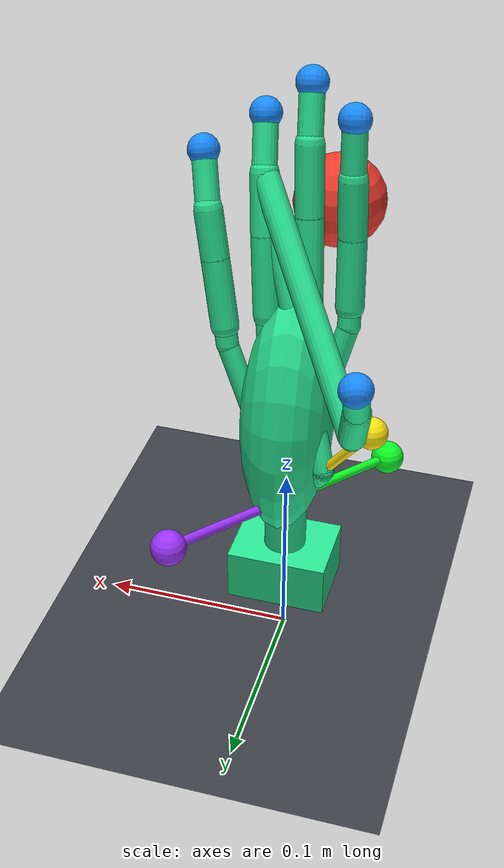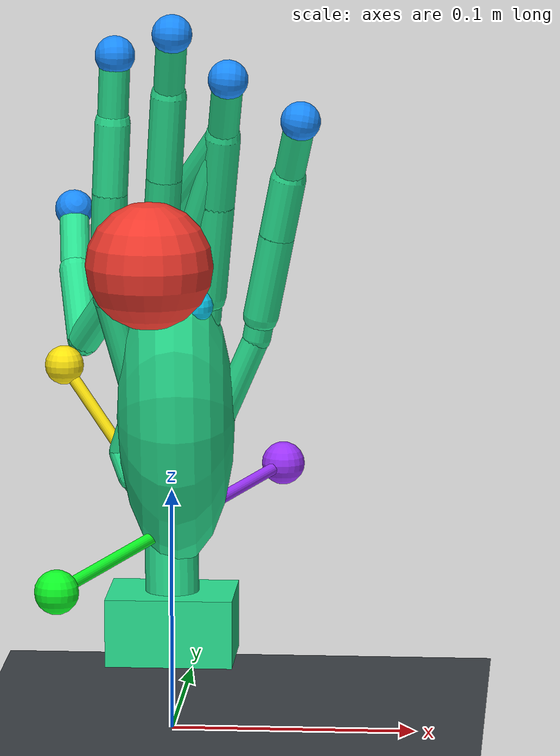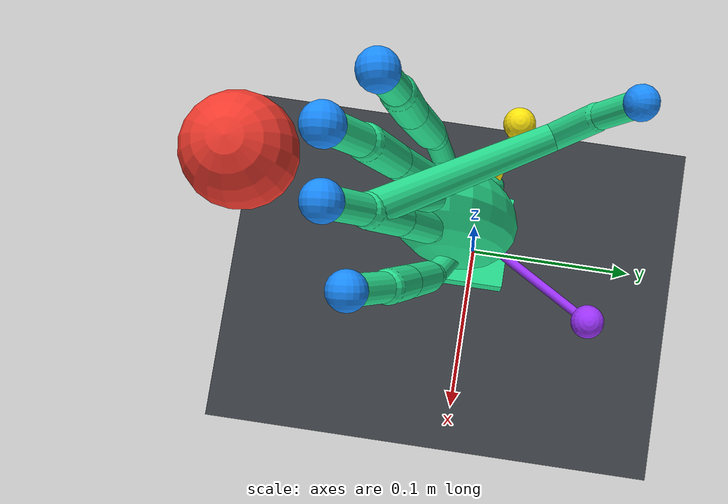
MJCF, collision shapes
<?xml version="1.0" encoding="utf-8"?>
<mujoco model="hand_stage1_export3_palm_orientation_debug">
  <include file="hand_stage1_export3.xml"/>
  <visual>
    <global azimuth="145" elevation="-25" offwidth="1280" offheight="900"/>
  </visual>
  <asset>
    <texture type="2d" name="ground_checker" builtin="checker" rgb1="0.18 0.20 0.22" rgb2="0.28 0.30 0.32" width="300" height="300"/>
    <material name="ground_mat" texture="ground_checker" texrepeat="5 5" reflectance="0.15"/>
  </asset>
  <worldbody>
    <light pos="-0.25 0.25 0.5"/>
    <geom name="ground" type="plane" pos="0 0 0" size="0.4 0.4 0.02" material="ground_mat" contype="1" conaffinity="3"/>
    <body name="ball" pos="0 -0.1 0.21">
      <freejoint name="ball_freejoint"/>
      <geom name="ball_geom" type="sphere" size="0.025" rgba="0.95 0.23 0.18 1" mass="0.03" friction="0.8 0.05 0.001" condim="3" contype="2" conaffinity="1"/>
    </body>
    <geom name="palm_center_marker" type="sphere" pos="0.00057114467 -0.0006589003 0.085273056" size="0.007" rgba="1 0.55 0.05 1" contype="0" conaffinity="0"/>
    <geom name="palmar_side_marker" type="sphere" pos="-0.040299708 -0.068222889 0.072440256" size="0.009" rgba="0.05 1 0.15 1" contype="0" conaffinity="0"/>
    <geom name="dorsal_side_marker" type="sphere" pos="0.041441998 0.066905089 0.098105855" size="0.009" rgba="0.62 0.2 1 1" contype="0" conaffinity="0"/>
    <geom name="finger_forward_marker" type="sphere" pos="0.011103507 -0.025327667 0.18160852" size="0.008" rgba="0.05 0.85 1 1" contype="0" conaffinity="0"/>
    <geom name="thumb_side_marker" type="sphere" pos="-0.045456894 0.015123374 0.14877376" size="0.008" rgba="1 0.9 0.05 1" contype="0" conaffinity="0"/>
    <geom name="palmar_axis" type="capsule" fromto="0.00057114467 -0.0006589003 0.085273056 -0.040299708 -0.068222889 0.072440256" size="0.0025" rgba="0.05 1 0.15 1" contype="0" conaffinity="0"/>
    <geom name="dorsal_axis" type="capsule" fromto="0.00057114467 -0.0006589003 0.085273056 0.041441998 0.066905089 0.098105855" size="0.0025" rgba="0.62 0.2 1 1" contype="0" conaffinity="0"/>
    <geom name="finger_forward_axis" type="capsule" fromto="0.00057114467 -0.0006589003 0.085273056 0.011103507 -0.025327667 0.18160852" size="0.0025" rgba="0.05 0.85 1 1" contype="0" conaffinity="0"/>
    <geom name="thumb_side_axis" type="capsule" fromto="0.00057114467 -0.0006589003 0.085273056 -0.045456894 0.015123374 0.14877376" size="0.0025" rgba="1 0.9 0.05 1" contype="0" conaffinity="0"/>
    <camera name="full_hand_with_ball" pos="0.20 -0.34 0.29" xyaxes="0.834219 0.551433 0 -0.16379 0.247785 0.954869" fovy="45"/>
    <camera name="front" pos="0.20 -0.34 0.29" xyaxes="0.834219 0.551433 0 -0.16379 0.247785 0.954869" fovy="45"/>
    <camera name="side" pos="0.34 0.02 0.24" xyaxes="-0.190477 0.981692 0 -0.169999 -0.0329848 0.984892" fovy="45"/>
    <camera name="top" pos="0.02 -0.06 0.48" xyaxes="0.707107 0.707107 0 -0.705346 0.705346 0.0705346" fovy="45"/>
    <camera name="palm" pos="0.03 -0.23 0.21" xyaxes="0.995037 0.0995037 0 -0.030061 0.30061 0.953268" fovy="38"/>
  </worldbody>
</mujoco>

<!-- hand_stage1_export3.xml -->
<mujoco model="hand_stage1_export3">
  <compiler angle="radian" meshdir="../meshes_export3" autolimits="true"/>
  <option timestep="0.002" gravity="0 0 -9.81"/>
  <visual>
    <global azimuth="145" elevation="-25" offwidth="1280" offheight="900"/>
  </visual>
  <default>
    <joint damping="0.08" armature="0.0001"/>
    <geom solref="0.01 1" solimp="0.9 0.95 0.001"/>
  </default>
  <statistic center="0.005 -0.045 0.18" extent="0.24"/>
  <asset>
    <mesh name="hand_base_link_mesh" file="hand_base_link.STL" scale="1 1 1"/>
    <mesh name="wrist_middle_link_mesh" file="wrist_middle_link.STL" scale="1 1 1"/>
    <mesh name="palm_link_mesh" file="palm_link.STL" scale="1 1 1"/>
    <mesh name="index_mcp_flex_link_mesh" file="index_mcp_flex_link.STL" scale="1 1 1"/>
    <mesh name="index_proximal_phalanx_link_mesh" file="index_proximal_phalanx_link.STL" scale="1 1 1"/>
    <mesh name="index_proximal_inter_link_mesh" file="index_proximal_inter_link.STL" scale="1 1 1"/>
    <mesh name="index_distal_link_mesh" file="index_distal_link.STL" scale="1 1 1"/>
    <mesh name="middle_mcp_flex_link_mesh" file="middle_mcp_flex_link.STL" scale="1 1 1"/>
    <mesh name="middle_proximal_phalanx_link_mesh" file="middle_proximal_phalanx_link.STL" scale="1 1 1"/>
    <mesh name="middle_proximal_inter_link_mesh" file="middle_proximal_inter_link.STL" scale="1 1 1"/>
    <mesh name="middle_distal_link_mesh" file="middle_distal_link.STL" scale="1 1 1"/>
    <mesh name="ring_mcp_flex_link_mesh" file="ring_mcp_flex_link.STL" scale="1 1 1"/>
    <mesh name="ring_proximal_phalanx_link_mesh" file="ring_proximal_phalanx_link.STL" scale="1 1 1"/>
    <mesh name="ring_proximal_inter_link_mesh" file="ring_proximal_inter_link.STL" scale="1 1 1"/>
    <mesh name="ring_distal_link_mesh" file="ring_distal_link.STL" scale="1 1 1"/>
    <mesh name="little_mcp_flex_link_mesh" file="little_mcp_flex_link.STL" scale="1 1 1"/>
    <mesh name="little_proximal_phalanx_link_mesh" file="little_proximal_phalanx_link.STL" scale="1 1 1"/>
    <mesh name="little_proximal_inter_link_mesh" file="little_proximal_inter_link.STL" scale="1 1 1"/>
    <mesh name="little_distal_link_mesh" file="little_distal_link.STL" scale="1 1 1"/>
    <mesh name="thumb_root_connector_link_mesh" file="thumb_root_connector_link.STL" scale="1 1 1"/>
    <mesh name="thumb_trapezium1_link_mesh" file="thumb_trapezium1_link.STL" scale="1 1 1"/>
    <mesh name="thumb_metacarpal_link_mesh" file="thumb_metacarpal_link.STL" scale="1 1 1"/>
    <mesh name="thumb_proximal_link_mesh" file="thumb_proximal_link.STL" scale="1 1 1"/>
    <mesh name="thumb_distal_link_mesh" file="thumb_distal_link.STL" scale="1 1 1"/>
  </asset>
  <worldbody>
    <body name="hand_base_link" pos="0 0 0.05">
      <inertial pos="0 0 0" mass="0.012576523" diaginertia="1e-5 1e-5 1e-5"/>
      <geom name="hand_base_link_export3_visual" type="mesh" mesh="hand_base_link_mesh" pos="0 0 0" quat="1 0 0 0" rgba="0.792156862745098 0.819607843137255 0.933333333333333 1" contype="0" conaffinity="0" group="2"/>
      <geom name="hand_base_link_collision_proxy" type="box" pos="0 0 -0.006" size="0.026 0.020 0.014" rgba="0.16 0.90 0.58 0.34" contype="1" conaffinity="2" group="3"/>
      <body name="wrist_middle_link" pos="0 0 0.015" quat="0.021734468 0.031497148 -0.70640493 -0.70677267">
        <joint name="wrist_1_joint" type="hinge" axis="0 0 -1" limited="true" range="-0.8 0.8" damping="0.08" armature="0.0001"/>
        <inertial pos="0 0 0" mass="0.010062493" diaginertia="1e-5 1e-5 1e-5"/>
        <geom name="wrist_middle_link_export3_visual" type="mesh" mesh="wrist_middle_link_mesh" pos="0 0 0" quat="1 0 0 0" rgba="0.792156862745098 0.819607843137255 0.933333333333333 1" contype="0" conaffinity="0" group="2"/>
        <geom name="wrist_middle_link_collision_proxy" type="capsule" fromto="0 -0.018 0 0 0.018 0" size="0.011" rgba="0.16 0.90 0.58 0.34" contype="1" conaffinity="2" group="3"/>
        <body name="palm_link" pos="-0.0008 0.020263937 -0.0007" quat="0.7042091 -0.063949537 -0.7042091 0.063949537">
          <inertial pos="0 0 0" mass="0.14137095" diaginertia="1e-5 1e-5 1e-5"/>
          <geom name="palm_link_export3_visual" type="mesh" mesh="palm_link_mesh" pos="0 0 0" quat="1 0 0 0" rgba="0.792156862745098 0.819607843137255 0.933333333333333 1" contype="0" conaffinity="0" group="2"/>
          <geom name="palm_link_collision_proxy_ellipsoid" type="ellipsoid" pos="0 0.048 0.002" size="0.030 0.064 0.024" rgba="0.16 0.90 0.58 0.34" contype="1" conaffinity="2" group="3" friction="0.9 0.04 0.001"/>
          <geom name="palm_link_index_mcp_flex_joint_collision_proxy_spoke" type="capsule" fromto="0 0 0 -0.0014332629 0.1003371 -0.024802645" size="0.0055" rgba="0.16 0.90 0.58 0.34" contype="1" conaffinity="2" group="3" friction="0.9 0.04 0.001"/>
          <geom name="palm_link_middle_mcp_flex_joint_collision_proxy_spoke" type="capsule" fromto="0 0 0 -0.0014332629 0.097567248 -0.0048026451" size="0.0055" rgba="0.16 0.90 0.58 0.34" contype="1" conaffinity="2" group="3" friction="0.9 0.04 0.001"/>
          <geom name="palm_link_ring_mcp_flex_joint_collision_proxy_spoke" type="capsule" fromto="0 0 0 -0.0014332629 0.090988841 0.015197355" size="0.0055" rgba="0.16 0.90 0.58 0.34" contype="1" conaffinity="2" group="3" friction="0.9 0.04 0.001"/>
          <geom name="palm_link_little_mcp_flex_joint_collision_proxy_spoke" type="capsule" fromto="0 0 0 -0.0014332629 0.082348214 0.035197355" size="0.0055" rgba="0.16 0.90 0.58 0.34" contype="1" conaffinity="2" group="3" friction="0.9 0.04 0.001"/>
          <geom name="palm_link_thumb_root_connector_fixed_joint_collision_proxy_spoke" type="capsule" fromto="0 0 0 0.0064687769 0.019331857 -0.016418226" size="0.0055" rgba="0.16 0.90 0.58 0.34" contype="1" conaffinity="2" group="3" friction="0.9 0.04 0.001"/>
          <body name="index_mcp_flex_link" pos="-0.0014332629 0.1003371 -0.024802645" quat="0.70710678 0 0.70710678 0">
            <joint name="index_mcp_flex_joint" type="hinge" axis="0 0 -1" limited="true" range="-0.5 0.5" damping="0.08" armature="0.0001"/>
            <inertial pos="0 0 0" mass="0.0017548052" diaginertia="1e-5 1e-5 1e-5"/>
            <geom name="index_mcp_flex_link_export3_visual" type="mesh" mesh="index_mcp_flex_link_mesh" pos="0 0 0" quat="1 0 0 0" rgba="0.792156862745098 0.819607843137255 0.933333333333333 1" contype="0" conaffinity="0" group="2"/>
            <geom name="index_mcp_flex_link_collision_proxy" type="capsule" fromto="0 0 0 -0.00051676254 0.0097416976 -0.00026673708" size="0.0058" rgba="0.16 0.90 0.58 0.34" contype="1" conaffinity="2" group="3" friction="0.9 0.04 0.001"/>
            <body name="index_proximal_phalanx_link" pos="-0.00051676254 0.0097416976 -0.00026673708" quat="0.70685854 -0.018735 0.70685854 0.018735">
              <joint name="index_mcp_abd_joint" type="hinge" axis="0 0 -1" limited="true" range="0.2 1.2" damping="0.08" armature="0.0001"/>
              <inertial pos="0 0 0" mass="0.0070310696" diaginertia="1e-5 1e-5 1e-5"/>
              <geom name="index_proximal_phalanx_link_export3_visual" type="mesh" mesh="index_proximal_phalanx_link_mesh" pos="0 0 0" quat="1 0 0 0" rgba="0.792156862745098 0.819607843137255 0.933333333333333 1" contype="0" conaffinity="0" group="2"/>
              <geom name="index_proximal_phalanx_link_collision_proxy" type="capsule" fromto="0 0 0 -0.00021096449 0.034999364 0.00025" size="0.0072" rgba="0.16 0.90 0.58 0.34" contype="1" conaffinity="2" group="3" friction="0.9 0.04 0.001"/>
              <body name="index_proximal_inter_link" pos="-0.00021096449 0.034999364 0.00025" quat="0.97605087 0.012185394 0.058843732 0.20907807">
                <joint name="index_pip_joint" type="hinge" axis="0.109773553624728 -0.0483929965230635 -0.992777862772996" limited="true" range="0 1.57" damping="0.08" armature="0.0001"/>
                <inertial pos="0 0 0" mass="0.0059704873" diaginertia="1e-5 1e-5 1e-5"/>
                <geom name="index_proximal_inter_link_export3_visual" type="mesh" mesh="index_proximal_inter_link_mesh" pos="0 0 0" quat="1 0 0 0" rgba="0.792156862745098 0.819607843137255 0.933333333333333 1" contype="0" conaffinity="0" group="2"/>
                <geom name="index_proximal_inter_link_collision_proxy" type="capsule" fromto="0 0 0 0.0097266332 0.027252107 -0.00045436552" size="0.0072" rgba="0.16 0.90 0.58 0.34" contype="1" conaffinity="2" group="3" friction="0.9 0.04 0.001"/>
                <body name="index_distal_link" pos="0.0097266332 0.027252107 -0.00045436552" quat="1 0 0 0">
                  <joint name="index_dip_joint" type="hinge" axis="0 0 -1" limited="true" range="0 1.2" damping="0.08" armature="0.0001"/>
                  <inertial pos="0 0 0" mass="0.0053528415" diaginertia="1e-5 1e-5 1e-5"/>
                  <geom name="index_distal_link_export3_visual" type="mesh" mesh="index_distal_link_mesh" pos="0 0 0" quat="1 0 0 0" rgba="0.792156862745098 0.819607843137255 0.933333333333333 1" contype="0" conaffinity="0" group="2"/>
                  <geom name="index_distal_link_collision_proxy" type="capsule" fromto="0 0 0 0.011092007 0.025709199 -6.7060969e-05" size="0.0062" rgba="0.16 0.90 0.58 0.34" contype="1" conaffinity="2" group="3" friction="0.9 0.04 0.001"/>
                  <site name="index_tip_site" pos="0.011092007 0.025709199 -6.7060969e-05" size="0.008" rgba="0.10 0.55 1.0 1" type="sphere"/>
                </body>
              </body>
            </body>
          </body>
          <body name="middle_mcp_flex_link" pos="-0.0014332629 0.097567248 -0.0048026451" quat="0.70710678 0 0.70710678 0">
            <joint name="middle_mcp_flex_joint" type="hinge" axis="0 0 -1" limited="true" range="-0.5 0.5" damping="0.08" armature="0.0001"/>
            <inertial pos="0 0 0" mass="0.0017548053" diaginertia="1e-5 1e-5 1e-5"/>
            <geom name="middle_mcp_flex_link_export3_visual" type="mesh" mesh="middle_mcp_flex_link_mesh" pos="0 0 0" quat="1 0 0 0" rgba="0.792156862745098 0.819607843137255 0.933333333333333 1" contype="0" conaffinity="0" group="2"/>
            <geom name="middle_mcp_flex_link_collision_proxy" type="capsule" fromto="0 0 0 -0.00064254397 0.0097342104 -0.00026673708" size="0.0058" rgba="0.16 0.90 0.58 0.34" contype="1" conaffinity="2" group="3" friction="0.9 0.04 0.001"/>
            <body name="middle_proximal_phalanx_link" pos="-0.00064254397 0.0097342104 -0.00026673708" quat="0.48325317 0.48325317 0.51620381 0.51620381">
              <joint name="middle_mcp_abd_joint" type="hinge" axis="0 0 -1" limited="true" range="0.2 1.2" damping="0.08" armature="0.0001"/>
              <inertial pos="0 0 0" mass="0.0090532579" diaginertia="1e-5 1e-5 1e-5"/>
              <geom name="middle_proximal_phalanx_link_export3_visual" type="mesh" mesh="middle_proximal_phalanx_link_mesh" pos="0 0 0" quat="1 0 0 0" rgba="0.792156862745098 0.819607843137255 0.933333333333333 1" contype="0" conaffinity="0" group="2"/>
              <geom name="middle_proximal_phalanx_link_collision_proxy" type="capsule" fromto="0 0 0 0.044915416 -0.0027577974 -0.0003" size="0.0072" rgba="0.16 0.90 0.58 0.34" contype="1" conaffinity="2" group="3" friction="0.9 0.04 0.001"/>
              <body name="middle_proximal_inter_link" pos="0.044915416 -0.0027577974 -0.0003" quat="1 0 0 0">
                <joint name="middle_pip_joint" type="hinge" axis="0 0 -1" limited="true" range="0 1.57" damping="0.08" armature="0.0001"/>
                <inertial pos="0 0 0" mass="0.0073249127" diaginertia="1e-5 1e-5 1e-5"/>
                <geom name="middle_proximal_inter_link_export3_visual" type="mesh" mesh="middle_proximal_inter_link_mesh" pos="0 0 0" quat="1 0 0 0" rgba="0.792156862745098 0.819607843137255 0.933333333333333 1" contype="0" conaffinity="0" group="2"/>
                <geom name="middle_proximal_inter_link_collision_proxy" type="capsule" fromto="0 0 0 0.03498049 -0.0011684823 -0.0002" size="0.0072" rgba="0.16 0.90 0.58 0.34" contype="1" conaffinity="2" group="3" friction="0.9 0.04 0.001"/>
                <body name="middle_distal_link" pos="0.03498049 -0.0011684823 -0.0002" quat="1 0 0 0">
                  <joint name="middle_dip_joint" type="hinge" axis="0 0 -1" limited="true" range="0 1.2" damping="0.08" armature="0.0001"/>
                  <inertial pos="0 0 0" mass="0.0053530376" diaginertia="1e-5 1e-5 1e-5"/>
                  <geom name="middle_distal_link_export3_visual" type="mesh" mesh="middle_distal_link_mesh" pos="0 0 0" quat="1 0 0 0" rgba="0.792156862745098 0.819607843137255 0.933333333333333 1" contype="0" conaffinity="0" group="2"/>
                  <geom name="middle_distal_link_collision_proxy" type="capsule" fromto="0 0 0 0.027301483 -0.006215095 -4.054405e-05" size="0.0062" rgba="0.16 0.90 0.58 0.34" contype="1" conaffinity="2" group="3" friction="0.9 0.04 0.001"/>
                  <site name="middle_tip_site" pos="0.027301483 -0.006215095 -4.054405e-05" size="0.008" rgba="0.10 0.55 1.0 1" type="sphere"/>
                </body>
              </body>
            </body>
          </body>
          <body name="ring_mcp_flex_link" pos="-0.0014332629 0.090988841 0.015197355" quat="0.70710678 0 0.70710678 0">
            <joint name="ring_mcp_flex_joint" type="hinge" axis="-0.995998795256862 -0.0893666595933805 0" limited="true" range="-0.5 0.5" damping="0.08" armature="0.0001"/>
            <inertial pos="0 0 0" mass="0.0017548053" diaginertia="1e-5 1e-5 1e-5"/>
            <geom name="ring_mcp_flex_link_export3_visual" type="mesh" mesh="ring_mcp_flex_link_mesh" pos="0 0 0" quat="1 0 0 0" rgba="0.792156862745098 0.819607843137255 0.933333333333333 1" contype="0" conaffinity="0" group="2"/>
            <geom name="ring_mcp_flex_link_collision_proxy" type="capsule" fromto="0 0 0 -0.00087180699 0.0097163608 -0.00026673708" size="0.0058" rgba="0.16 0.90 0.58 0.34" contype="1" conaffinity="2" group="3" friction="0.9 0.04 0.001"/>
            <body name="ring_proximal_phalanx_link" pos="-0.00087180699 0.0097163608 -0.00026673708" quat="0.47713555 0.47713555 0.52186365 0.52186365">
              <joint name="ring_mcp_abd_joint" type="hinge" axis="0 0 -1" limited="true" range="-0.2 1.2" damping="0.08" armature="0.0001"/>
              <inertial pos="0 0 0" mass="0.0079217428" diaginertia="1e-5 1e-5 1e-5"/>
              <geom name="ring_proximal_phalanx_link_export3_visual" type="mesh" mesh="ring_proximal_phalanx_link_mesh" pos="0 0 0" quat="1 0 0 0" rgba="0.792156862745098 0.819607843137255 0.933333333333333 1" contype="0" conaffinity="0" group="2"/>
              <geom name="ring_proximal_phalanx_link_collision_proxy" type="capsule" fromto="0 0 0 0.039933234 -0.0023101612 -0.0003" size="0.0072" rgba="0.16 0.90 0.58 0.34" contype="1" conaffinity="2" group="3" friction="0.9 0.04 0.001"/>
              <body name="ring_proximal_inter_link" pos="0.039933234 -0.0023101612 -0.0003" quat="0.70710678 0 0 -0.70710678">
                <joint name="ring_pip_joint" type="hinge" axis="0 0 -1" limited="true" range="0 1.57" damping="0.08" armature="0.0001"/>
                <inertial pos="0 0 0" mass="0.0062089763" diaginertia="1e-5 1e-5 1e-5"/>
                <geom name="ring_proximal_inter_link_export3_visual" type="mesh" mesh="ring_proximal_inter_link_mesh" pos="0 0 0" quat="1 0 0 0" rgba="0.792156862745098 0.819607843137255 0.933333333333333 1" contype="0" conaffinity="0" group="2"/>
                <geom name="ring_proximal_inter_link_collision_proxy" type="capsule" fromto="0 0 0 0.0039742641 0.029735589 -0.0002" size="0.0072" rgba="0.16 0.90 0.58 0.34" contype="1" conaffinity="2" group="3" friction="0.9 0.04 0.001"/>
                <body name="ring_distal_link" pos="0.0039742641 0.029735589 -0.0002" quat="0.70710678 0 0 0.70710678">
                  <joint name="ring_dip_joint" type="hinge" axis="0 0 -1" limited="true" range="0 1.2" damping="0.08" armature="0.0001"/>
                  <inertial pos="0 0 0" mass="0.0053519063" diaginertia="1e-5 1e-5 1e-5"/>
                  <geom name="ring_distal_link_export3_visual" type="mesh" mesh="ring_distal_link_mesh" pos="0 0 0" quat="1 0 0 0" rgba="0.792156862745098 0.819607843137255 0.933333333333333 1" contype="0" conaffinity="0" group="2"/>
                  <geom name="ring_distal_link_collision_proxy" type="capsule" fromto="0 0 0 0.026733217 -0.0083266507 -4.4813101e-05" size="0.0062" rgba="0.16 0.90 0.58 0.34" contype="1" conaffinity="2" group="3" friction="0.9 0.04 0.001"/>
                  <site name="ring_tip_site" pos="0.026733217 -0.0083266507 -4.4813101e-05" size="0.008" rgba="0.10 0.55 1.0 1" type="sphere"/>
                </body>
              </body>
            </body>
          </body>
          <body name="little_mcp_flex_link" pos="-0.0014332629 0.082348214 0.035197355" quat="0.70710678 0 0.70710678 0">
            <joint name="little_mcp_flex_joint" type="hinge" axis="0 0 -1" limited="true" range="-0.5 0.5" damping="0.08" armature="0.0001"/>
            <inertial pos="0 0 0" mass="0.0017548056" diaginertia="1e-5 1e-5 1e-5"/>
            <geom name="little_mcp_flex_link_export3_visual" type="mesh" mesh="little_mcp_flex_link_mesh" pos="0 0 0" quat="1 0 0 0" rgba="0.792156862745098 0.819607843137255 0.933333333333333 1" contype="0" conaffinity="0" group="2"/>
            <geom name="little_mcp_flex_link_collision_proxy" type="capsule" fromto="0 0 0 -0.0018088145 0.0095862352 -0.00026673708" size="0.0058" rgba="0.16 0.90 0.58 0.34" contype="1" conaffinity="2" group="3" friction="0.9 0.04 0.001"/>
            <body name="little_proximal_phalanx_link" pos="-0.0018088145 0.0095862352 -0.00026673708" quat="0.4512713 0.4512713 0.54438425 0.54438425">
              <joint name="little_mcp_abd_joint" type="hinge" axis="0 0 -1" limited="true" range="-0.2 1.2" damping="0.08" armature="0.0001"/>
              <inertial pos="0 0 0" mass="0.0070532455" diaginertia="1e-5 1e-5 1e-5"/>
              <geom name="little_proximal_phalanx_link_export3_visual" type="mesh" mesh="little_proximal_phalanx_link_mesh" pos="0 0 0" quat="1 0 0 0" rgba="0.792156862745098 0.819607843137255 0.933333333333333 1" contype="0" conaffinity="0" group="2"/>
              <geom name="little_proximal_phalanx_link_collision_proxy" type="capsule" fromto="0 0 0 0.034983 -0.0010805 -0.0003" size="0.0072" rgba="0.16 0.90 0.58 0.34" contype="1" conaffinity="2" group="3" friction="0.9 0.04 0.001"/>
              <body name="little_proximal_inter_link" pos="0.034983 -0.0010805 -0.0003" quat="0.70710548 0 0 -0.70710808">
                <joint name="little_pip_joint" type="hinge" axis="0 0 -1" limited="true" range="0 1.57" damping="0.08" armature="0.0001"/>
                <inertial pos="0 0 0" mass="0.0050879458" diaginertia="1e-5 1e-5 1e-5"/>
                <geom name="little_proximal_inter_link_export3_visual" type="mesh" mesh="little_proximal_inter_link_mesh" pos="0 0 0" quat="1 0 0 0" rgba="0.792156862745098 0.819607843137255 0.933333333333333 1" contype="0" conaffinity="0" group="2"/>
                <geom name="little_proximal_inter_link_collision_proxy" type="capsule" fromto="0 0 0 0.00077177 0.024988 -0.0002" size="0.0072" rgba="0.16 0.90 0.58 0.34" contype="1" conaffinity="2" group="3" friction="0.9 0.04 0.001"/>
                <body name="little_distal_link" pos="0.00077177 0.024988 -0.0002" quat="0.70710548 0 0 0.70710808">
                  <joint name="little_dip_joint" type="hinge" axis="0 0 -1" limited="true" range="0 1.2" damping="0.08" armature="0.0001"/>
                  <inertial pos="0 0 0" mass="0.0053522317" diaginertia="1e-5 1e-5 1e-5"/>
                  <geom name="little_distal_link_export3_visual" type="mesh" mesh="little_distal_link_mesh" pos="0 0 0" quat="1 0 0 0" rgba="0.792156862745098 0.819607843137255 0.933333333333333 1" contype="0" conaffinity="0" group="2"/>
                  <geom name="little_distal_link_collision_proxy" type="capsule" fromto="0 0 0 0.026961146 -0.0075560895 -4.619485e-05" size="0.0062" rgba="0.16 0.90 0.58 0.34" contype="1" conaffinity="2" group="3" friction="0.9 0.04 0.001"/>
                  <site name="little_tip_site" pos="0.026961146 -0.0075560895 -4.619485e-05" size="0.008" rgba="0.10 0.55 1.0 1" type="sphere"/>
                </body>
              </body>
            </body>
          </body>
          <body name="thumb_root_connector_link" pos="0.0064687769 0.019331857 -0.016418226" quat="0.24714875 -0.24714875 -0.53303917 0.77052205">
            <inertial pos="0 0 0" mass="0.0018183277" diaginertia="1e-5 1e-5 1e-5"/>
            <geom name="thumb_root_connector_link_export3_visual" type="mesh" mesh="thumb_root_connector_link_mesh" pos="0 0 0" quat="1 0 0 0" rgba="0.792156862745098 0.819607843137255 0.933333333333333 1" contype="0" conaffinity="0" group="2"/>
            <geom name="thumb_root_connector_link_collision_proxy" type="capsule" fromto="0 0 0 -6.3364e-05 0.00012377 -0.011586" size="0.0058" rgba="0.16 0.90 0.58 0.34" contype="1" conaffinity="2" group="3" friction="0.9 0.04 0.001"/>
            <body name="thumb_trapezium1_link" pos="-6.3364e-05 0.00012377 -0.011586" quat="0.32938029 -0.50061516 0.49011734 -0.63299138">
              <joint name="thumb_cmc_abd_joint" type="hinge" axis="-0.95043 -0.31095 0" limited="true" range="-0.8 0.8" damping="0.08" armature="0.0001"/>
              <inertial pos="0 0 0" mass="0.001" diaginertia="1e-5 1e-5 1e-5"/>
              <geom name="thumb_trapezium1_link_export3_visual" type="mesh" mesh="thumb_trapezium1_link_mesh" pos="0 0 0" quat="1 0 0 0" rgba="0.792156862745098 0.819607843137255 0.933333333333333 1" contype="0" conaffinity="0" group="2"/>
              <geom name="thumb_trapezium1_link_collision_proxy" type="capsule" fromto="0 0 0 0.022854 0.085965 0.12154" size="0.0058" rgba="0.16 0.90 0.58 0.34" contype="1" conaffinity="2" group="3" friction="0.9 0.04 0.001"/>
              <body name="thumb_metacarpal_link" pos="0.022854 0.085965 0.12154" quat="0.62632132 -0.30499946 -0.67785638 0.23496312">
                <joint name="thumb_cmc_flex_joint" type="hinge" axis="-0.70578 0.7006 0.105" limited="true" range="0 1.2" damping="0.08" armature="0.0001"/>
                <inertial pos="0 0 0" mass="0.012375" diaginertia="1e-5 1e-5 1e-5"/>
                <geom name="thumb_metacarpal_link_export3_visual" type="mesh" mesh="thumb_metacarpal_link_mesh" pos="0 0 0" quat="1 0 0 0" rgba="0.79216 0.81961 0.93333 1" contype="0" conaffinity="0" group="2"/>
                <geom name="thumb_metacarpal_link_collision_proxy" type="capsule" fromto="0 0 0 -0.11064 0.054899 0.049241" size="0.0068" rgba="0.16 0.90 0.58 0.34" contype="1" conaffinity="2" group="3" friction="0.9 0.04 0.001"/>
                <body name="thumb_proximal_link" pos="-0.11064 0.054899 0.049241" quat="0.62633436 0.30499562 0.67783917 -0.23498297">
                  <joint name="thumb_mcp_joint" type="hinge" axis="0 0 -1" limited="true" range="0 1.2" damping="0.08" armature="0.0001"/>
                  <inertial pos="0 0 0" mass="0.0062816" diaginertia="1e-5 1e-5 1e-5"/>
                  <geom name="thumb_proximal_link_export3_visual" type="mesh" mesh="thumb_proximal_link_mesh" pos="0 0 0" quat="1 0 0 0" rgba="0.79216 0.81961 0.93333 1" contype="0" conaffinity="0" group="2"/>
                  <geom name="thumb_proximal_link_collision_proxy" type="capsule" fromto="0 0 0 -0.0033345 0.031826 -0.000105" size="0.0068" rgba="0.16 0.90 0.58 0.34" contype="1" conaffinity="2" group="3" friction="0.9 0.04 0.001"/>
                  <body name="thumb_distal_link" pos="-0.0033345 0.031826 -0.000105" quat="-3.6732051e-06 -0 0 1">
                    <joint name="thumb_ip_joint" type="hinge" axis="0 0 1" limited="true" range="0 1.2" damping="0.08" armature="0.0001"/>
                    <inertial pos="0 0 0" mass="0.0073168" diaginertia="1e-5 1e-5 1e-5"/>
                    <geom name="thumb_distal_link_export3_visual" type="mesh" mesh="thumb_distal_link_mesh" pos="0 0 0" quat="1 0 0 0" rgba="0.79216 0.81961 0.93333 1" contype="0" conaffinity="0" group="2"/>
                    <geom name="thumb_distal_link_collision_proxy" type="capsule" fromto="0 0 0 0.00052061935 -0.027995157 -1.2280723e-05" size="0.0062" rgba="0.16 0.90 0.58 0.34" contype="1" conaffinity="2" group="3" friction="0.9 0.04 0.001"/>
                    <site name="thumb_tip_site" pos="0.00052061935 -0.027995157 -1.2280723e-05" size="0.008" rgba="0.10 0.55 1.0 1" type="sphere"/>
                  </body>
                </body>
              </body>
            </body>
          </body>
        </body>
      </body>
    </body>
  </worldbody>
  <actuator>
    <position name="wrist_1_joint_pos" joint="wrist_1_joint" kp="5" ctrllimited="true" ctrlrange="-0.8 0.8"/>
    <position name="index_mcp_flex_joint_pos" joint="index_mcp_flex_joint" kp="3" ctrllimited="true" ctrlrange="-0.5 0.5"/>
    <position name="index_mcp_abd_joint_pos" joint="index_mcp_abd_joint" kp="3" ctrllimited="true" ctrlrange="0.2 1.2"/>
    <position name="index_pip_joint_pos" joint="index_pip_joint" kp="2" ctrllimited="true" ctrlrange="0 1.57"/>
    <position name="index_dip_joint_pos" joint="index_dip_joint" kp="2" ctrllimited="true" ctrlrange="0 1.2"/>
    <position name="middle_mcp_flex_joint_pos" joint="middle_mcp_flex_joint" kp="3" ctrllimited="true" ctrlrange="-0.5 0.5"/>
    <position name="middle_mcp_abd_joint_pos" joint="middle_mcp_abd_joint" kp="3" ctrllimited="true" ctrlrange="0.2 1.2"/>
    <position name="middle_pip_joint_pos" joint="middle_pip_joint" kp="2" ctrllimited="true" ctrlrange="0 1.57"/>
    <position name="middle_dip_joint_pos" joint="middle_dip_joint" kp="2" ctrllimited="true" ctrlrange="0 1.2"/>
    <position name="ring_mcp_flex_joint_pos" joint="ring_mcp_flex_joint" kp="3" ctrllimited="true" ctrlrange="-0.5 0.5"/>
    <position name="ring_mcp_abd_joint_pos" joint="ring_mcp_abd_joint" kp="3" ctrllimited="true" ctrlrange="-0.2 1.2"/>
    <position name="ring_pip_joint_pos" joint="ring_pip_joint" kp="2" ctrllimited="true" ctrlrange="0 1.57"/>
    <position name="ring_dip_joint_pos" joint="ring_dip_joint" kp="2" ctrllimited="true" ctrlrange="0 1.2"/>
    <position name="little_mcp_flex_joint_pos" joint="little_mcp_flex_joint" kp="3" ctrllimited="true" ctrlrange="-0.5 0.5"/>
    <position name="little_mcp_abd_joint_pos" joint="little_mcp_abd_joint" kp="3" ctrllimited="true" ctrlrange="-0.2 1.2"/>
    <position name="little_pip_joint_pos" joint="little_pip_joint" kp="2" ctrllimited="true" ctrlrange="0 1.57"/>
    <position name="little_dip_joint_pos" joint="little_dip_joint" kp="2" ctrllimited="true" ctrlrange="0 1.2"/>
    <position name="thumb_cmc_abd_joint_pos" joint="thumb_cmc_abd_joint" kp="2" ctrllimited="true" ctrlrange="-0.8 0.8"/>
    <position name="thumb_cmc_flex_joint_pos" joint="thumb_cmc_flex_joint" kp="2" ctrllimited="true" ctrlrange="0 1.2"/>
    <position name="thumb_mcp_joint_pos" joint="thumb_mcp_joint" kp="3" ctrllimited="true" ctrlrange="0 1.2"/>
    <position name="thumb_ip_joint_pos" joint="thumb_ip_joint" kp="2" ctrllimited="true" ctrlrange="0 1.2"/>
  </actuator>
</mujoco>
